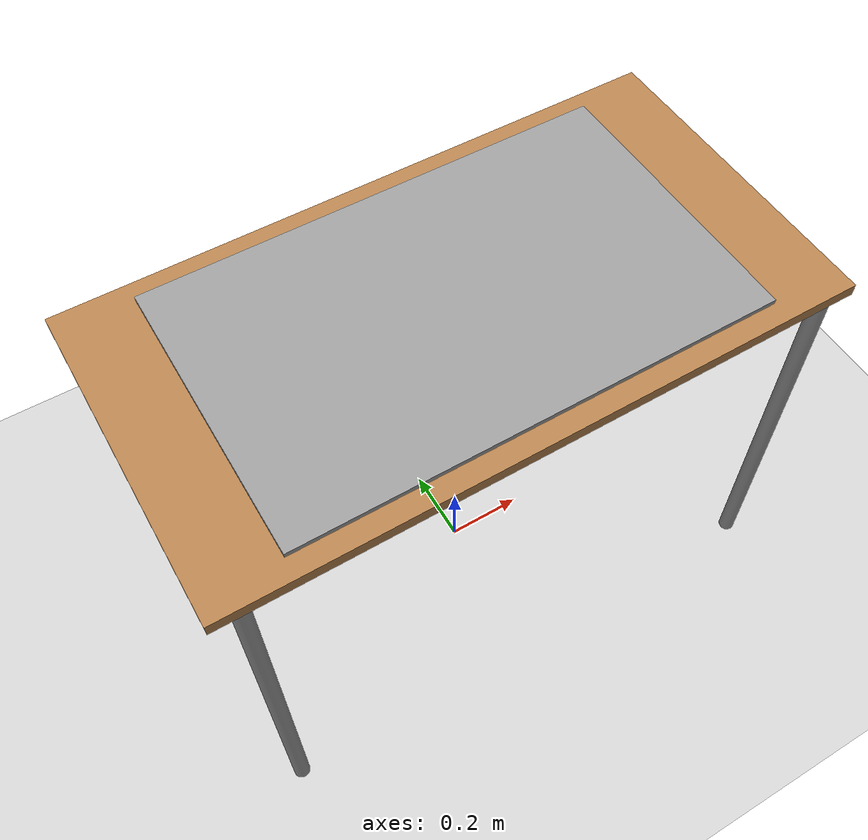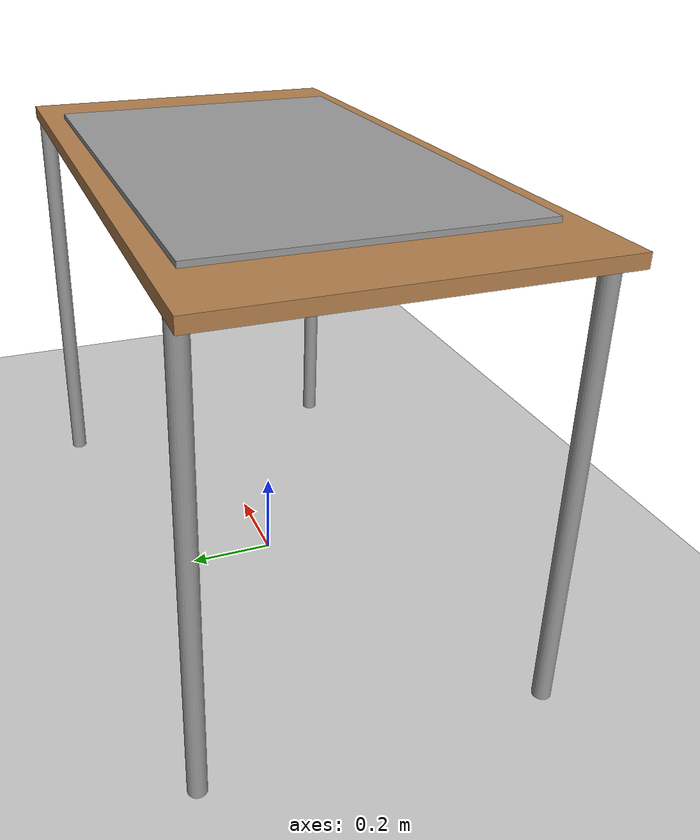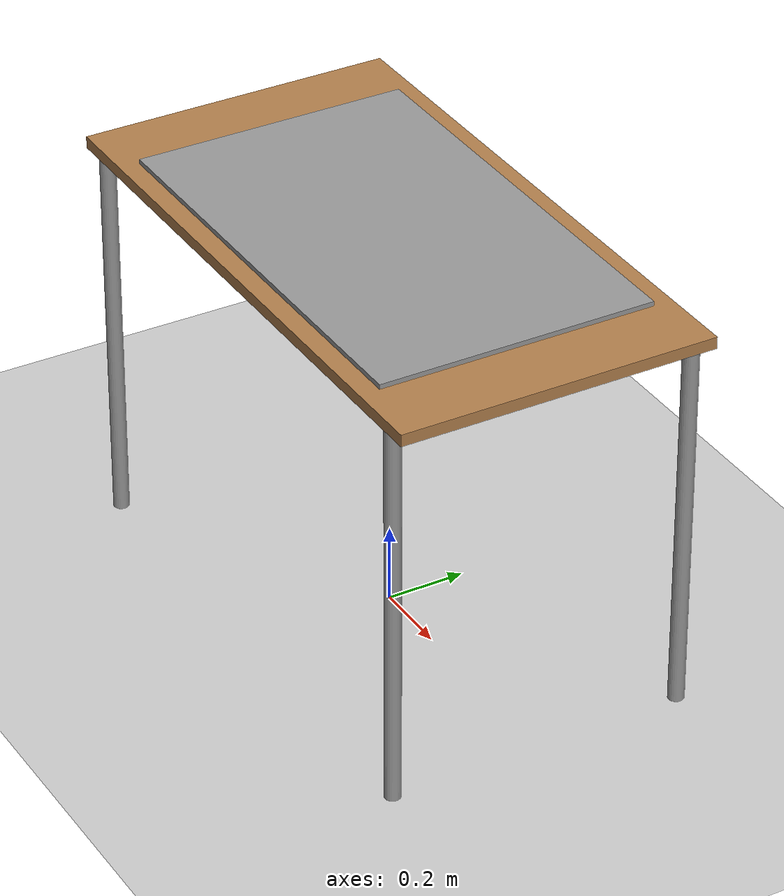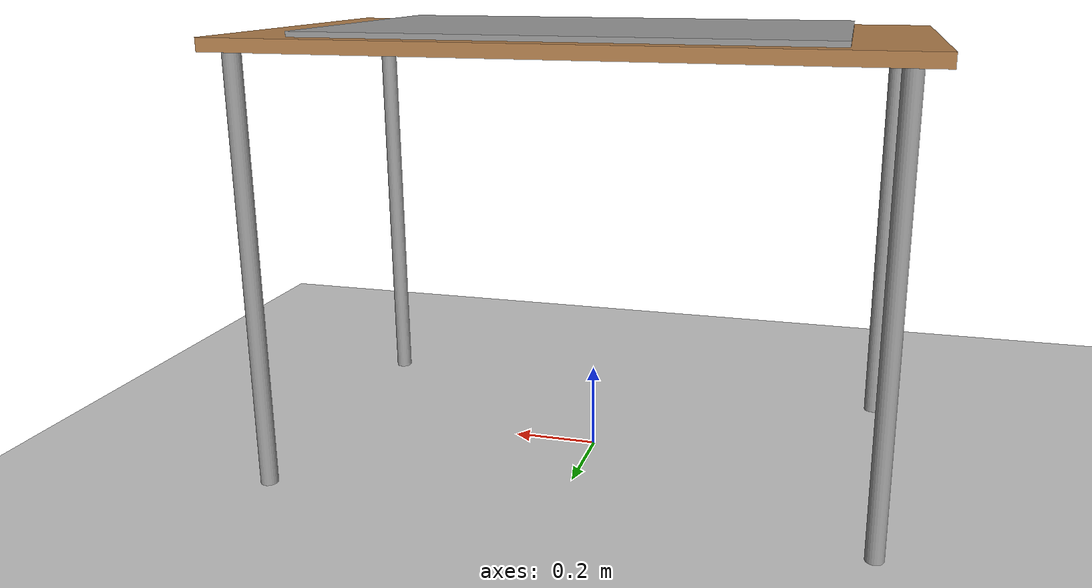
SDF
<sdf version="1.10">
 <world name="airstand_world">
  <plugin filename="gz-sim-physics-system" name="gz::sim::systems::Physics"/>
  <plugin filename="gz-sim-user-commands-system" name="gz::sim::systems::UserCommands"/>
  <plugin filename="gz-sim-scene-broadcaster-system" name="gz::sim::systems::SceneBroadcaster"/>
  <physics name="1ms" type="ignored">
   <max_step_size>0.001</max_step_size>
   <real_time_factor>1.0</real_time_factor>
  </physics>
  <light name="sun" type="directional">
   <pose>0 0 10 0 0 0</pose>
   <diffuse>0.8 0.8 0.8 1</diffuse>
   <specular>0.2 0.2 0.2 1</specular>
   <attenuation>
    <range>1000</range>
    <constant>0.9</constant>
    <linear>0.01</linear>
    <quadratic>0.001</quadratic>
   </attenuation>
   <direction>-0.5 0.1 -0.9</direction>
  </light>
  <model name="ground_plane">
   <static>true</static>
   <link name="link">
    <collision name="collision"><geometry><plane><normal>0 0 1</normal></plane></geometry></collision>
    <visual name="visual">
     <geometry><plane><normal>0 0 1</normal><size>100 100</size></plane></geometry>
     <material>
      <ambient>0.8 0.8 0.8 1</ambient>
      <diffuse>0.8 0.8 0.8 1</diffuse>
      <specular>0.8 0.8 0.8 1</specular>
     </material>
    </visual>
   </link>
  </model>
  <include><uri>airstand/table</uri></include>
 </world>
</sdf>

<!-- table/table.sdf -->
<sdf version="1.5">
<model name="Table">

<static>true</static>
<link name="link">
    <collision name="surface">
        <pose>0 0 1.0 0 0 0</pose>
        <geometry>
            <box>
                <size>1.5 0.8 0.03</size>
            </box>
        </geometry>
    </collision>
    <visual name="surface">
        <pose>0 0 1.0 0 0 0</pose>
        <geometry>
            <box>
                <size>1.5 0.8 0.03</size>
            </box>
        </geometry>
        <material>
            <diffuse>1.0 1.0 1.0</diffuse>
            <script>
                <uri>file://media/materials/scripts/gazebo.material</uri>
                <name>Gazebo/Wood</name>
            </script>
            <!-- PBR for Ignition, material scripts for gazebo classic-->
            <pbr>
                <metal>
                    <albedo_map>Table_Diffuse.jpg</albedo_map>
                </metal>
            </pbr>
        </material>
    </visual>

    <collision name="glass">
        <pose>0 0 1.021 0 0 0</pose>
        <geometry>
            <box>
                <size>1.14 0.7 0.012</size>
            </box>
        </geometry>
        <surface>
            <friction>
              <ode>
                <mu>0.0005</mu>
                <mu2>0.0005</mu2>
              </ode>
            </friction>
          </surface>
    </collision>
    <visual name="glass">
        <pose>0 0 1.021 0 0 0</pose>
        <geometry>
            <box>
                <size>1.14 0.7 0.012</size>
            </box>
        </geometry>
        <material>
            <diffuse>0.5 0.5 0.5</diffuse>
            <script>
                <uri>file://media/materials/scripts/gazebo.material</uri>
                <name>Gazebo/Grey</name>
            </script>
        </material>
    </visual>

    <collision name="front_left_leg">
        <pose>0.68 0.38 0.5 0 0 0</pose>
        <geometry>
            <cylinder>
                <radius>0.02</radius>
                <length>1.0</length>
            </cylinder>
        </geometry>
    </collision>
    <visual name="front_left_leg">
        <pose>0.68 0.38 0.5 0 0 0</pose>
        <geometry>
            <cylinder>
                <radius>0.02</radius>
                <length>1.0</length>
            </cylinder>
        </geometry>
        <material>
            <diffuse>0.5 0.5 0.5</diffuse>
            <script>
                <uri>file://media/materials/scripts/gazebo.material</uri>
                <name>Gazebo/Grey</name>
            </script>
        </material>
    </visual>
    <collision name="front_right_leg">
        <pose>0.68 -0.38 0.5 0 0 0</pose>
        <geometry>
            <cylinder>
                <radius>0.02</radius>
                <length>1.0</length>
            </cylinder>
        </geometry>
    </collision>
    <visual name="front_right_leg">
        <pose>0.68 -0.38 0.5 0 0 0</pose>
        <geometry>
            <cylinder>
                <radius>0.02</radius>
                <length>1.0</length>
            </cylinder>
        </geometry>
        <material>
            <diffuse>0.5 0.5 0.5</diffuse>
            <script>
                <uri>file://media/materials/scripts/gazebo.material</uri>
                <name>Gazebo/Grey</name>
            </script>
        </material>
    </visual>
    <collision name="back_right_leg">
        <pose>-0.68 -0.38 0.5 0 0 0</pose>
        <geometry>
            <cylinder>
                <radius>0.02</radius>
                <length>1.0</length>
            </cylinder>
        </geometry>
    </collision>
    <visual name="back_right_leg">
        <pose>-0.68 -0.38 0.5 0 0 0</pose>
        <geometry>
            <cylinder>
                <radius>0.02</radius>
                <length>1.0</length>
            </cylinder>
        </geometry>
        <material>
            <diffuse>0.5 0.5 0.5</diffuse>
            <script>
                <uri>file://media/materials/scripts/gazebo.material</uri>
                <name>Gazebo/Grey</name>
            </script>
        </material>
    </visual>
    <collision name="back_left_leg">
        <pose>-0.68 0.38 0.5 0 0 0</pose>
        <geometry>
            <cylinder>
                <radius>0.02</radius>
                <length>1.0</length>
            </cylinder>
        </geometry>
    </collision>
    <visual name="back_left_leg">
        <pose>-0.68 0.38 0.5 0 0 0</pose>
        <geometry>
            <cylinder>
                <radius>0.02</radius>
                <length>1.0</length>
            </cylinder>
        </geometry>
        <material>
            <diffuse>0.5 0.5 0.5</diffuse>
            <script>
                <uri>file://media/materials/scripts/gazebo.material</uri>
                <name>Gazebo/Grey</name>
            </script>
        </material>
    </visual>
</link>

</model>
</sdf>
